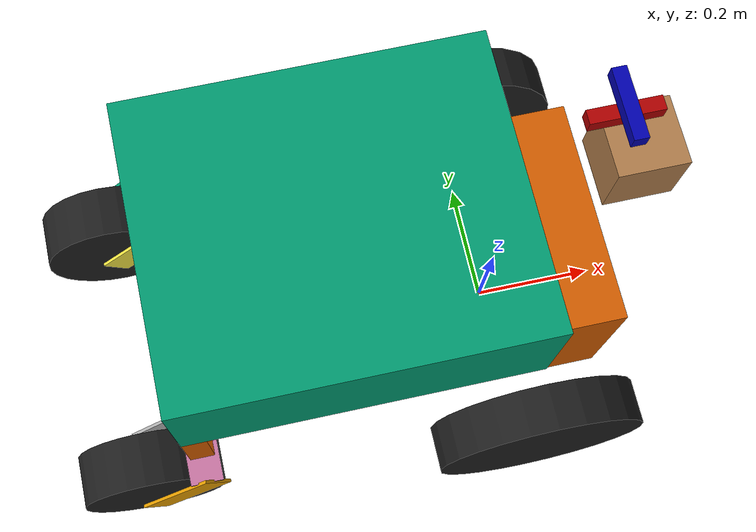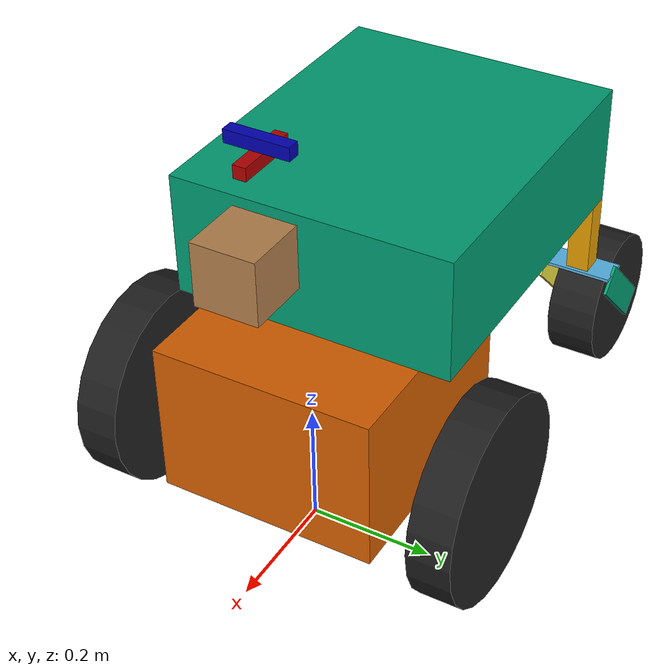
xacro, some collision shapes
<?xml version="1.0"?>
<robot
     xmlns:xacro="http://www.ros.org/wiki/xacro" name="mobot">
  <xacro:include filename="$(find mobot_urdf)/urdf/mobot_w_lidar.xacro" />
  <xacro:include filename="$(find mobot_urdf)/urdf/example_camera.xacro" />
  <xacro:include filename="$(find mobot_urdf)/urdf/example_kinect.xacro" />
  <!-- attach the camera to the mobile robot -->
  <joint name="camera_joint" type="fixed">
    <parent link="base_link" />
    <child link="camera_link" />
    <origin rpy="0 0 0 " xyz="0.1 0 0.7"/>
  </joint>
  <!-- attach the kinect to the mobile robot -->
  <joint name="kinect_joint" type="fixed">
    <parent link="base_link" />
    <child link="kinect_link" />
    <origin rpy="0 0 0 " xyz="0.1 0 0.72"/>
  </joint>
  <!-- kinect depth frame has a different viewpoint; publish it separately-->
</robot>

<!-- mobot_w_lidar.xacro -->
<robot
     xmlns:xacro="http://www.ros.org/wiki/xacro" name="mobot">
     <!-- define the base-link origin to lie at floor level, between the drive wheels-->
     <!--main body is a simple box; origin is a center of box-->
    <xacro:property name="bodylen" value="0.5461" />
    <xacro:property name="bodywidth" value="0.4572" />
    <xacro:property name="bodyheight" value="0.2" />
    <xacro:property name="bodyclearance" value="0.4" />  <!--clearance from bottom of box to ground-->
    <!-- derived values-->
    <xacro:property name="half_bodylen" value="${bodylen/2.0}" />
    <xacro:property name="half_bodyheight" value="${bodyheight/2.0}" />
    <!-- placement of main body relative to base link frame -->
    <xacro:property name="bodyOX" value="${-half_bodylen}" />
    <xacro:property name="bodyOY" value="0" />
    <xacro:property name="bodyOZ" value="0.45" />

    <!-- define the drive-wheel dimensions-->
    <xacro:property name="tirediam" value="0.3302" />
    <xacro:property name="tirerad" value="${tirediam/2.0}" />
    <xacro:property name="tirewidth" value="0.06985" />
    <!-- "track" is the distance between the drive wheels -->
    <xacro:property name="track" value=".56515" />

    <!-- battery box dimensions -->
    <xacro:property name="batterylen" value="0.381" />
    <xacro:property name="batterywidth" value="0.3556" />
    <xacro:property name="batteryheight" value="0.254" />
    <!-- placement of battery box relative to base frame -->
    <xacro:property name="batOX" value="-0.05" />
    <xacro:property name="batOY" value="0" />
    <xacro:property name="batOZ" value="0.22" />

    <xacro:property name="M_PI" value="3.1415926535897931" />
    <xacro:property name="boschwidth" value="0.0381" />
    <xacro:property name="casterdrop" value="0.125" />
    <xacro:property name="bracketwidth" value="0.1175" />
    <xacro:property name="bracketheight" value="0.16" />
    <xacro:property name="bracketthick" value="0.0508" />
    <xacro:property name="bracketangle" value="0.7854" />
    <xacro:property name="casterwidth" value="0.0826" />
    <xacro:property name="casterdiam" value="0.2286" />

    <!--here is a default inertia matrix with small, but legal values; use this when don't need accuracy for I -->
    <!--model will assign inertia matrix dominated by main body box -->
    <xacro:macro name="default_inertial" params="mass">
        <inertial>
            <mass value="${mass}" />
            <inertia ixx="0.01" ixy="0.0" ixz="0.0"
         iyy="0.01" iyz="0.0"
         izz="0.01" />
        </inertial>
    </xacro:macro>
    <xacro:macro name="wheel" params="prefix reflect">
        <link name="${prefix}_wheel">
            <visual>
                <geometry>
                    <cylinder radius="${tirerad}" length="${tirewidth}"/>
                </geometry>
            </visual>
            <collision>
                <geometry>
                    <cylinder radius="${tirerad}" length="${tirewidth}"/>
                </geometry>
            </collision>
            <inertial>
            <!--assign inertial properties to drive wheels -->
            <mass value="1" />
            <inertia ixx="0.1" ixy="0" ixz="0"
              iyy="0.1" iyz="0"
              izz="0.1" />
        </inertial>
        </link>
        <joint name="${prefix}_wheel_joint" type="continuous">
            <axis xyz="0 0 1"/>
            <parent link="base_link"/>
            <child link="${prefix}_wheel"/>
            <origin xyz="0 ${reflect*track/2} ${tirerad}" rpy="0 ${M_PI/2} ${M_PI/2}"/>
            <limit effort="100" velocity="15" />
            <joint_properties damping="0.0" friction="0.0" />
        </joint>
    </xacro:macro>
    <xacro:macro name="caster" params="prefix reflect">
        <link name="castdrop_${prefix}">
            <visual>
                <geometry>
                    <box size="${boschwidth} ${boschwidth} ${casterdrop}"/>
                </geometry>
                <origin xyz="0 0 0" rpy="0 0 0"/>
            </visual>
            <collision>
                <geometry>
                    <box size="${boschwidth} ${boschwidth} ${casterdrop}"/>
                </geometry>
                <origin xyz="0 0 0" rpy="0 0 0"/>
            </collision>
            <xacro:default_inertial mass="0.2"/>
        </link>
        <joint name="cast2base_${prefix}" type="fixed">
            <parent link="base_link"/>
            <child link="castdrop_${prefix}"/>
            <origin xyz="${-bodylen/2+bodyOX+boschwidth/2} ${reflect*bodywidth/2-reflect*boschwidth/2} ${-casterdrop/2-bodyheight/2+bodyOZ}" />
        </joint>
        <link name="brackettop_${prefix}">
            <visual>
                <geometry>
                    <box size="${bracketwidth} ${bracketthick} .005"/>
                </geometry>
                <origin xyz="0 0 0" rpy="0 0 0"/>
            </visual>
            <collision>
                <geometry>
                    <box size="${bracketwidth} ${bracketthick} .005"/>
                </geometry>
                <origin xyz="0 0 0" rpy="0 0 0"/>
            </collision>
            <xacro:default_inertial mass="0.2"/>
        </link>
        <joint name="cast2bracket_${prefix}" type="continuous">
            <axis xyz="0 0 1"/>
            <parent link="castdrop_${prefix}"/>
            <child link="brackettop_${prefix}"/>
            <origin xyz="0 0 ${-casterdrop/2}" rpy="0 0 ${M_PI/2}"/>
            <joint_properties damping="0.0" friction="0.0" />
        </joint>
        <link name="bracketside1_${prefix}">
            <visual>
                <geometry>
                    <box size="${bracketthick} ${bracketheight} .005"/>
                </geometry>
                <origin xyz="0 0 0" rpy="${M_PI/2} ${-bracketangle} ${M_PI/2}"/>
            </visual>
            <collision>
                <geometry>
                    <box size="${bracketthick} ${bracketheight} .005"/>
                </geometry>
                <origin xyz="0 0 0" rpy="${M_PI/2} ${-bracketangle} ${M_PI/2}"/>
            </collision>
            <xacro:default_inertial mass="0.2"/>
        </link>
        <joint name="brack2top1_${prefix}" type="fixed">
            <parent link="brackettop_${prefix}"/>
            <child link="bracketside1_${prefix}"/>
            <origin xyz="${bracketwidth/2} .04 -${bracketheight/2-.02}" rpy="0 0 0" />
        </joint>
        <link name="bracketside2_${prefix}">
            <visual>
                <geometry>
                    <box size="${bracketthick} ${bracketheight} .005"/>
                </geometry>
                <origin xyz="0 0 0" rpy="${M_PI/2} ${-bracketangle} ${M_PI/2}"/>
            </visual>
            <collision>
                <geometry>
                    <box size="${bracketthick} ${bracketheight} .005"/>
                </geometry>
                <origin xyz="0 0 0" rpy="${M_PI/2} ${-bracketangle} ${M_PI/2}"/>
            </collision>
            <xacro:default_inertial mass="0.2"/>
        </link>
        <joint name="brack2top2_${prefix}" type="fixed">
            <parent link="brackettop_${prefix}"/>
            <child link="bracketside2_${prefix}"/>
            <origin xyz="${-bracketwidth/2} .04 -${bracketheight/2-.02}" rpy="0 0 0" />
        </joint>
        <link name="${prefix}_casterwheel">
            <visual>
                <geometry>
                    <cylinder radius="${casterdiam/2}" length="${casterwidth}"/>
                </geometry>
            </visual>
            <collision>
                <geometry>
                    <cylinder radius="${casterdiam/2}" length="${casterwidth}"/>
                </geometry>
            </collision>
            <!-- accept default inertial properties for caster wheels-->
            <xacro:default_inertial mass="0.5"/>
        </link>
        <joint name="${prefix}_caster_joint" type="continuous">
            <axis xyz="0 0 1"/>
            <parent link="bracketside1_${prefix}"/>
            <child link="${prefix}_casterwheel"/>
            <origin xyz="${-casterwidth/2-.02} .053 -.053" rpy="0 ${M_PI/2} 0"/>
            <limit effort="100" velocity="15" />
            <joint_properties damping="0.0" friction="0.0" />
        </joint>
    </xacro:macro>

    <xacro:caster prefix="left" reflect="1"/>
    <xacro:caster prefix="right" reflect="-1"/>

    <link name="base_link">
        <visual>
            <geometry>
                <box size="${bodylen} ${bodywidth} ${bodyheight}"/>
            </geometry>
            <origin xyz="${bodyOX} ${bodyOY} ${bodyOZ}" rpy="0 0 0"/>
        </visual>
        <collision>
            <geometry>
                <box size="${bodylen} ${bodywidth} ${bodyheight}"/>
            </geometry>
            <origin xyz="${bodyOX} ${bodyOY} ${bodyOZ}" rpy="0 0 0"/>
        </collision>
        <inertial>
            <!--assign almost all the mass to the main body box; set m= 100kg; treat I as approx m*r^2 -->
            <mass value="100" />
            <inertia ixx="10" ixy="0" ixz="0"
              iyy="10" iyz="0"
              izz="10" />
        </inertial>
    </link>

    <xacro:wheel prefix="left" reflect="1"/>
    <xacro:wheel prefix="right" reflect="-1"/>
    <link name="batterybox">
        <visual>
            <geometry>
                <box size="${batterylen} ${batterywidth} ${batteryheight}"/>
            </geometry>
            <origin xyz="0 0 0" rpy="0 0 0"/>
        </visual>
        <collision>
            <geometry>
                <box size="${batterylen} ${batterywidth} ${batteryheight}"/>
            </geometry>
            <origin xyz="0 0 0" rpy="0 0 0"/>
        </collision>
        <xacro:default_inertial mass="1"/>
    </link>
    <joint name="batterytobase" type="fixed">
        <parent link="base_link"/>
        <child link="batterybox"/>
        <origin xyz="${batOX} ${batOY} ${batOZ}" rpy="0 0 0"/>
    </joint>
 <gazebo>
  <plugin name="differential_drive_controller" filename="libgazebo_ros_diff_drive.so">
    <alwaysOn>true</alwaysOn>
    <updateRate>100</updateRate>
    <leftJoint>right_wheel_joint</leftJoint>
    <rightJoint>left_wheel_joint</rightJoint>
    <wheelSeparation>${track}</wheelSeparation>
    <wheelDiameter>${tirediam}</wheelDiameter>
    <torque>200</torque>
    <commandTopic>cmd_vel</commandTopic>
    <odometryTopic>odom</odometryTopic>
    <odometryFrame>odom</odometryFrame>
    <robotBaseFrame>base_link</robotBaseFrame>
    <!--don't publish wheel TF, so it does not conflict with robot_state_publisher -->
    <publishWheelTF>false</publishWheelTF>
    <publishWheelJointState>true</publishWheelJointState>
  </plugin>
 </gazebo>

  <gazebo reference="right_wheel">
    <mu1>100000.0</mu1>
    <mu2>100000.0</mu2>
    <material>Gazebo/Black</material>
  </gazebo>
  <gazebo reference="left_wheel">
    <mu1>100000.0</mu1>
    <mu2>100000.0</mu2>
    <material>Gazebo/Black</material>
  </gazebo>

  <gazebo reference="right_casterwheel">
    <mu1>100000.0</mu1>
    <mu2>100000.0</mu2>
    <material>Gazebo/Black</material>
  </gazebo>

  <gazebo reference="left_casterwheel">
    <mu1>100000.0</mu1>
    <mu2>100000.0</mu2>
    <material>Gazebo/Black</material>
  </gazebo>
  <gazebo>
     <plugin name="joint_state_publisher" filename="libgazebo_ros_joint_state_publisher.so">
       <jointName>cast2bracket_right, cast2bracket_left, right_caster_joint, left_caster_joint </jointName>
     </plugin>
  </gazebo>

  <!-- add a simulated lidar, including visual, collision and inertial properties, and physics simulation-->
  <link name="lidar_link">
      <collision>
          <origin xyz="0 0 0" rpy="0 0 0"/>
          <geometry>
              <!-- coarse LIDAR model; a simple box -->
              <box size="0.1 0.1 0.1"/>
          </geometry>
      </collision>

      <visual>
          <origin xyz="0 0 0" rpy="0 0 0" />
          <geometry>
              <mesh filename="package://mobot_urdf/meshes/hokuyo.dae"/>
          </geometry>
          <material name="sick_grey">
              <color rgba="0.7 0.5 0.3 1.0"/>
          </material>
      </visual>

      <inertial>
          <mass value="1e-5" />
          <origin xyz="0 0 0" rpy="0 0 0"/>
          <inertia ixx="1e-6" ixy="0" ixz="0" iyy="1e-6" iyz="0" izz="1e-6" />
      </inertial>
  </link>
  <!--the above displays a box meant to imply Lidar-->

  <joint name="lidar_joint" type="fixed">
      <axis xyz="0 1 0" />
      <origin xyz="0.15 0 0.56" rpy="0 0 0"/>
      <parent link="base_link"/>
      <child link="lidar_link"/>
  </joint>
    <!-- here is the gazebo plug-in to simulate a lidar sensor -->
  <gazebo reference="lidar_link">
    <sensor type="ray" name="head_hokuyo_sensor">
    <!--sensor type="gpu_ray" name="sick_lidar_sensor"-->
      <pose>0 0 0 0 0 0</pose>
      <visualize>true</visualize>
      <update_rate>40</update_rate>
      <ray>
        <scan>
          <horizontal>
            <samples>720</samples>
            <resolution>1</resolution>
            <min_angle>-1.570796</min_angle>
            <max_angle>1.570796</max_angle>
          </horizontal>
        </scan>
        <range>
          <min>0.10</min>
          <max>30.0</max>
          <resolution>0.01</resolution>
        </range>
        <noise>
          <type>gaussian</type>
          <mean>0.0</mean>
          <stddev>0.01</stddev>
        </noise>
      </ray>
      <!--plugin name="gazebo_ros_lidar_controller" filename="libgazebo_ros_gpu_laser.so"-->
      <plugin name="gazebo_ros_head_hokuyo_controller" filename="libgazebo_ros_laser.so">
        <topicName>/scan</topicName>
        <frameName>lidar_link</frameName>
      </plugin>
    </sensor>
  </gazebo>
</robot>

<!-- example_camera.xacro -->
<robot
     xmlns:xacro="http://www.ros.org/wiki/xacro" name="mobot_camera">

  <!-- add a simulated camera, including visual, collision and inertial properties, and physics simulation-->
  <link name="camera_link">
      <!-- here is the physical body (case) of the camera-->
      <collision>
          <origin xyz="0 0 0" rpy="0 0 0"/>
          <geometry>
              <box size="0.1 0.02 0.02"/>
          </geometry>
      </collision>

      <visual>
          <origin xyz="0 0 0" rpy="0 0 0" />
          <geometry>
              <box size="0.1 0.02 0.02"/>
          </geometry>
          <material name="camera_case">
              <color rgba="0.7 0.0 0.0 1.0"/>
          </material>
      </visual>

      <inertial>
          <mass value="0.1" />
          <origin xyz="0 0 0" rpy="0 0 0"/>
          <inertia ixx="0.0001" ixy="0" ixz="0" iyy="0.0001" iyz="0" izz="0.0001" />
      </inertial>
  </link>

 <!-- here is the gazebo plug-in to simulate a color camera -->
 <!--must refer to the above-defined link to place the camera in space-->
  <gazebo reference="camera_link">
   <!--optionally, displace/rotate the optical frame relative to the enclosure-->
   <pose>0.1 00 0.0 0 0 0</pose>
    <sensor type="camera" name="example_camera">
      <update_rate>30.0</update_rate>
      <camera name="example_camera">
        <!--describe some optical properties of the camera-->
        <!--field of view is expressed as an angle, in radians-->
        <horizontal_fov>1.0</horizontal_fov>
        <!--set resolution of pixels of image sensor, e.g. 640x480-->
        <image>
          <width>640</width>
          <height>480</height>
          <format>R8G8B8</format>
        </image>
        <clip>
          <!--min and max range of camera-->
          <near>0.01</near>
          <far>100.0</far>
        </clip>
        <noise>
          <!--optionally, add noise, to make images more realistic-->
          <type>gaussian</type>
          <!-- Noise is sampled independently per pixel on each frame.
               That pixel's noise value is added to each of its color
               channels, which at that point lie in the range [0,1]. -->
          <mean>0.0</mean>
          <stddev>0.007</stddev>
        </noise>
      </camera>
      <!--here is the plug-in that does the work of camera emulation-->
      <plugin name="camera_controller" filename="libgazebo_ros_camera.so">
        <alwaysOn>true</alwaysOn>
        <updateRate>10.0</updateRate> <!--can set the publication rate-->
        <cameraName>example_camera</cameraName> <!--topics will be example_camera/... -->
        <!--listen to the following topic name to get streaming images-->
        <imageTopicName>image_raw</imageTopicName>
        <!--the following topic carries info about the camera, e.g. 640x480, etc-->
        <cameraInfoTopicName>camera_info</cameraInfoTopicName>
        <!--frameName must match gazebo reference name...seems redundant-->
        <!-- this name will be the frame_id name in header of published frames-->
        <frameName>camera_link</frameName>
        <distortionK1>0.0</distortionK1>
        <distortionK2>0.0</distortionK2>
        <distortionK3>0.0</distortionK3>
        <distortionT1>0.0</distortionT1>
        <distortionT2>0.0</distortionT2>
      </plugin>
    </sensor>
  </gazebo>

</robot>

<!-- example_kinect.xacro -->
<robot
     xmlns:xacro="http://www.ros.org/wiki/xacro" name="example_kinect">

  <!-- add a simulated Kinect camera, including visual, collision and inertial properties, and physics simulation-->
  <link name="kinect_link">
      <!-- here is the physical body (case) of the camera-->
      <collision>
          <origin xyz="0 0 0" rpy="0 0 0"/>
          <geometry>
              <box size="0.02 0.1 0.02"/>
          </geometry>
      </collision>

      <visual>
          <origin xyz="0 0 0" rpy="0 0 0" />
          <geometry>
              <box size="0.02 0.1 0.02"/>
          </geometry>
          <material name="camera_case">
              <color rgba="0.0 0.0 0.7 1.0"/>
          </material>
      </visual>

      <inertial>
          <mass value="0.1" />
          <origin xyz="0 0 0" rpy="0 0 0"/>
          <inertia ixx="0.0001" ixy="0" ixz="0" iyy="0.0001" iyz="0" izz="0.0001" />
      </inertial>
  </link>

 <!-- here is the gazebo plug-in to simulate a color camera -->
 <!--must refer to the above-defined link to place the camera in space-->
  <gazebo reference="kinect_link">
    <sensor type="depth" name="openni_camera_camera">
        <always_on>1</always_on>
        <visualize>true</visualize>
        <camera>
            <horizontal_fov>1.047</horizontal_fov>
            <image>
                <width>640</width>
                <height>480</height>
                <format>R8G8B8</format>
            </image>
            <depth_camera>

            </depth_camera>
            <clip>
                <near>0.1</near>
                <far>100</far>
            </clip>
        </camera>
      <!--here is the plug-in that does the work of kinect emulation-->
       <plugin name="camera_controller" filename="libgazebo_ros_openni_kinect.so">
            <alwaysOn>true</alwaysOn>
                <updateRate>10.0</updateRate>
                <cameraName>kinect</cameraName>
                <frameName>kinect_depth_frame</frameName>
            <imageTopicName>rgb/image_raw</imageTopicName>
            <depthImageTopicName>depth/image_raw</depthImageTopicName>
            <pointCloudTopicName>depth/points</pointCloudTopicName>
            <cameraInfoTopicName>rgb/camera_info</cameraInfoTopicName>
            <depthImageCameraInfoTopicName>depth/camera_info</depthImageCameraInfoTopicName>
            <pointCloudCutoff>0.4</pointCloudCutoff>
                <hackBaseline>0.07</hackBaseline>
                <distortionK1>0.0</distortionK1>
                <distortionK2>0.0</distortionK2>
                <distortionK3>0.0</distortionK3>
                <distortionT1>0.0</distortionT1>
                <distortionT2>0.0</distortionT2>
            <CxPrime>0.0</CxPrime>
            <Cx>0.0</Cx>
            <Cy>0.0</Cy>
            <focalLength>0.0</focalLength>
            </plugin>
    </sensor>
  </gazebo>

</robot>
